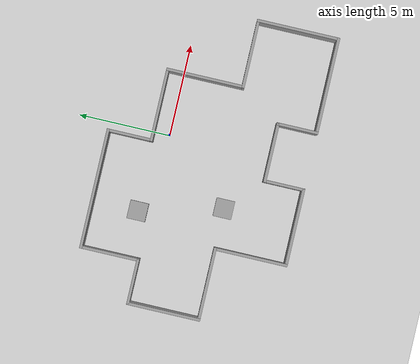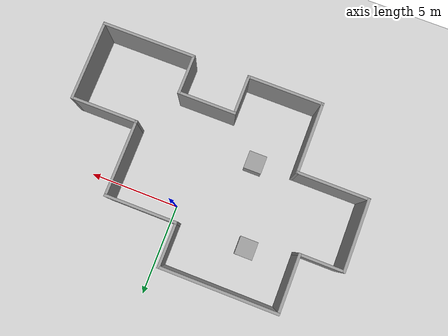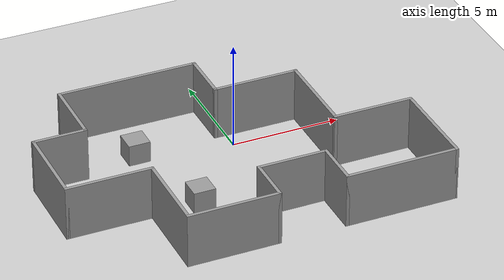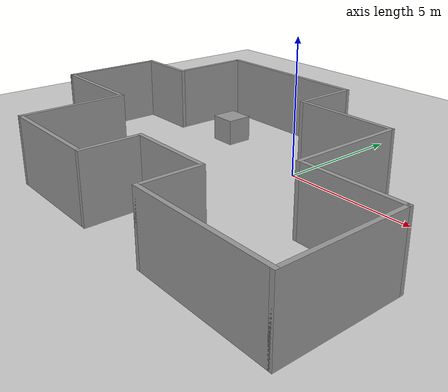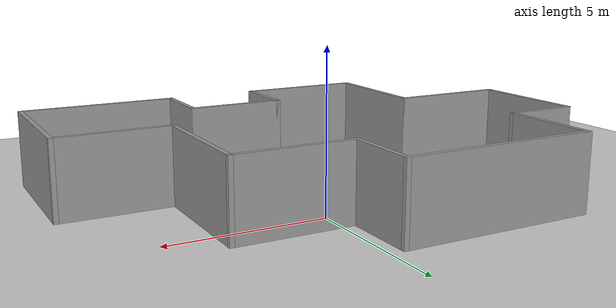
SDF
<sdf version="1.7">
 <world name="default">
  <light name="sun" type="directional">
   <pose>0 0 10 0 -0 0</pose>
   <diffuse>0.8 0.8 0.8 1</diffuse>
   <specular>0.2 0.2 0.2 1</specular>
   <attenuation>
    <range>1000</range>
    <constant>0.9</constant>
    <linear>0.01</linear>
    <quadratic>0.001</quadratic>
   </attenuation>
   <direction>-0.5 0.1 -0.9</direction>
   <spot><inner_angle>0</inner_angle><outer_angle>0</outer_angle><falloff>0</falloff></spot>
  </light>
  <model name="ground_plane">
   <static>1</static>
   <link name="link">
    <collision name="collision">
     <geometry><plane><normal>0 0 1</normal><size>100 100</size></plane></geometry>
     <surface>
      <contact><collide_bitmask>65535</collide_bitmask></contact>
      <friction><ode><mu>100</mu><mu2>50</mu2></ode></friction>
     </surface>
    </collision>
    <visual name="visual">
     <cast_shadows>0</cast_shadows>
     <geometry><plane><normal>0 0 1</normal><size>100 100</size></plane></geometry>
     <material>
      <script><uri>file://media/materials/scripts/gazebo.material</uri><name>Gazebo/Grey</name></script>
     </material>
    </visual>
   </link>
  </model>
  <gravity>0 0 -9.8</gravity>
  <magnetic_field>6e-06 2.3e-05 -4.2e-05</magnetic_field>
  <atmosphere type="adiabatic"/>
  <physics type="ode">
   <max_step_size>0.001</max_step_size>
   <real_time_factor>1</real_time_factor>
   <real_time_update_rate>1000</real_time_update_rate>
  </physics>
  <scene><ambient>0.4 0.4 0.4 1</ambient><background>0.7 0.7 0.7 1</background><shadows>1</shadows></scene>
  <spherical_coordinates>
   <surface_model>EARTH_WGS84</surface_model>
   <latitude_deg>0</latitude_deg>
   <longitude_deg>0</longitude_deg>
   <elevation>0</elevation>
   <heading_deg>0</heading_deg>
  </spherical_coordinates>
  <model name="building">
   <pose>-1.10665 -2.17338 0 0 -0 0</pose>
   <link name="Wall_1">
    <collision name="Wall_1_Collision">
     <geometry><box><size>3.25 0.15 2.5</size></box></geometry>
     <pose>0 0 1.25 0 -0 0</pose>
    </collision>
    <visual name="Wall_1_Visual">
     <pose>0 0 1.25 0 -0 0</pose>
     <geometry><box><size>3.25 0.15 2.5</size></box></geometry>
     <material>
      <script><uri>file://media/materials/scripts/gazebo.material</uri><name>Gazebo/Grey</name></script>
      <ambient>1 1 1 1</ambient>
     </material>
     <meta><layer>0</layer></meta>
    </visual>
    <pose>-5.725 3.85 0 0 -0 -1.5708</pose>
   </link>
   <link name="Wall_10">
    <collision name="Wall_10_Collision">
     <geometry><box><size>5.25 0.15 2.5</size></box></geometry>
     <pose>0 0 1.25 0 -0 0</pose>
    </collision>
    <visual name="Wall_10_Visual">
     <pose>0 0 1.25 0 -0 0</pose>
     <geometry><box><size>5.25 0.15 2.5</size></box></geometry>
     <material>
      <script><uri>file://media/materials/scripts/gazebo.material</uri><name>Gazebo/Grey</name></script>
      <ambient>1 1 1 1</ambient>
     </material>
     <meta><layer>0</layer></meta>
    </visual>
    <pose>5.525 -5.4 0 0 -0 0</pose>
   </link>
   <link name="Wall_11">
    <collision name="Wall_11_Collision">
     <geometry><box><size>4.5 0.15 2.5</size></box></geometry>
     <pose>0 0 1.25 0 -0 0</pose>
    </collision>
    <visual name="Wall_11_Visual">
     <pose>0 0 1.25 0 -0 0</pose>
     <geometry><box><size>4.5 0.15 2.5</size></box></geometry>
     <material>
      <script><uri>file://media/materials/scripts/gazebo.material</uri><name>Gazebo/Grey</name></script>
      <ambient>1 1 1 1</ambient>
     </material>
     <meta><layer>0</layer></meta>
    </visual>
    <pose>8.075 -3.225 0 0 -0 1.5708</pose>
   </link>
   <link name="Wall_12">
    <collision name="Wall_12_Collision">
     <geometry><box><size>3.75 0.15 2.5</size></box></geometry>
     <pose>0 0 1.25 0 -0 0</pose>
    </collision>
    <visual name="Wall_12_Visual">
     <pose>0 0 1.25 0 -0 0</pose>
     <geometry><box><size>3.75 0.15 2.5</size></box></geometry>
     <material>
      <script><uri>file://media/materials/scripts/gazebo.material</uri><name>Gazebo/Grey</name></script>
      <ambient>1 1 1 1</ambient>
     </material>
     <meta><layer>0</layer></meta>
    </visual>
    <pose>6.275 -1.05 0 0 -0 3.14159</pose>
   </link>
   <link name="Wall_13">
    <collision name="Wall_13_Collision">
     <geometry><box><size>4.25 0.15 2.5</size></box></geometry>
     <pose>0 0 1.25 0 -0 0</pose>
    </collision>
    <visual name="Wall_13_Visual">
     <pose>0 0 1.25 0 -0 0</pose>
     <geometry><box><size>4.25 0.15 2.5</size></box></geometry>
     <material>
      <script><uri>file://media/materials/scripts/gazebo.material</uri><name>Gazebo/Grey</name></script>
      <ambient>1 1 1 1</ambient>
     </material>
     <meta><layer>0</layer></meta>
    </visual>
    <pose>4.475 1 0 0 -0 1.5708</pose>
   </link>
   <link name="Wall_14">
    <collision name="Wall_14_Collision">
     <geometry><box><size>4 0.15 2.5</size></box></geometry>
     <pose>0 0 1.25 0 -0 0</pose>
    </collision>
    <visual name="Wall_14_Visual">
     <pose>0 0 1.25 0 -0 0</pose>
     <geometry><box><size>4 0.15 2.5</size></box></geometry>
     <material>
      <script><uri>file://media/materials/scripts/gazebo.material</uri><name>Gazebo/Grey</name></script>
      <ambient>1 1 1 1</ambient>
     </material>
     <meta><layer>0</layer></meta>
    </visual>
    <pose>2.55 3.05 0 0 -0 3.14159</pose>
   </link>
   <link name="Wall_15">
    <collision name="Wall_15_Collision">
     <geometry><box><size>2.5 0.15 2.5</size></box></geometry>
     <pose>0 0 1.25 0 -0 0</pose>
    </collision>
    <visual name="Wall_15_Visual">
     <pose>0 0 1.25 0 -0 0</pose>
     <geometry><box><size>2.5 0.15 2.5</size></box></geometry>
     <material>
      <script><uri>file://media/materials/scripts/gazebo.material</uri><name>Gazebo/Grey</name></script>
      <ambient>1 1 1 1</ambient>
     </material>
     <meta><layer>0</layer></meta>
    </visual>
    <pose>0.625 4.225 0 0 -0 1.5708</pose>
   </link>
   <link name="Wall_16">
    <collision name="Wall_16_Collision">
     <geometry><box><size>6.5 0.15 2.5</size></box></geometry>
     <pose>0 0 1.25 0 -0 0</pose>
    </collision>
    <visual name="Wall_16_Visual">
     <pose>0 0 1.25 0 -0 0</pose>
     <geometry><box><size>6.5 0.15 2.5</size></box></geometry>
     <material>
      <script><uri>file://media/materials/scripts/gazebo.material</uri><name>Gazebo/Grey</name></script>
      <ambient>1 1 1 1</ambient>
     </material>
     <meta><layer>0</layer></meta>
    </visual>
    <pose>-2.55 5.4 0 0 -0 3.14159</pose>
   </link>
   <link name="Wall_2">
    <collision name="Wall_2_Collision">
     <geometry><box><size>2.5 0.15 2.5</size></box></geometry>
     <pose>0 0 1.25 0 -0 0</pose>
    </collision>
    <visual name="Wall_2_Visual">
     <pose>0 0 1.25 0 -0 0</pose>
     <geometry><box><size>2.5 0.15 2.5</size></box></geometry>
     <material>
      <script><uri>file://media/materials/scripts/gazebo.material</uri><name>Gazebo/Grey</name></script>
      <ambient>1 1 1 1</ambient>
     </material>
     <meta><layer>0</layer></meta>
    </visual>
    <pose>-6.9 2.3 0 0 -0 3.14159</pose>
   </link>
   <link name="Wall_3">
    <collision name="Wall_3_Collision">
     <geometry><box><size>4 0.15 2.5</size></box></geometry>
     <pose>0 0 1.25 0 -0 0</pose>
    </collision>
    <visual name="Wall_3_Visual">
     <pose>0 0 1.25 0 -0 0</pose>
     <geometry><box><size>4 0.15 2.5</size></box></geometry>
     <material>
      <script><uri>file://media/materials/scripts/gazebo.material</uri><name>Gazebo/Grey</name></script>
      <ambient>1 1 1 1</ambient>
     </material>
     <meta><layer>0</layer></meta>
    </visual>
    <pose>-8.075 0.375 0 0 -0 -1.5708</pose>
   </link>
   <link name="Wall_4">
    <collision name="Wall_4_Collision">
     <geometry><box><size>4 0.15 2.5</size></box></geometry>
     <pose>0 0 1.25 0 -0 0</pose>
    </collision>
    <visual name="Wall_4_Visual">
     <pose>0 0 1.25 0 -0 0</pose>
     <geometry><box><size>4 0.15 2.5</size></box></geometry>
     <material>
      <script><uri>file://media/materials/scripts/gazebo.material</uri><name>Gazebo/Grey</name></script>
      <ambient>1 1 1 1</ambient>
     </material>
     <meta><layer>0</layer></meta>
    </visual>
    <pose>-6.15 -1.55 0 0 -0 0</pose>
   </link>
   <link name="Wall_5">
    <collision name="Wall_5_Collision">
     <geometry><box><size>4 0.15 2.5</size></box></geometry>
     <pose>0 0 1.25 0 -0 0</pose>
    </collision>
    <visual name="Wall_5_Visual">
     <pose>0 0 1.25 0 -0 0</pose>
     <geometry><box><size>4 0.15 2.5</size></box></geometry>
     <material>
      <script><uri>file://media/materials/scripts/gazebo.material</uri><name>Gazebo/Grey</name></script>
      <ambient>1 1 1 1</ambient>
     </material>
     <meta><layer>0</layer></meta>
    </visual>
    <pose>-4.225 -3.475 0 0 -0 -1.5708</pose>
   </link>
   <link name="Wall_6">
    <collision name="Wall_6_Collision">
     <geometry><box><size>4.25 0.15 2.5</size></box></geometry>
     <pose>0 0 1.25 0 -0 0</pose>
    </collision>
    <visual name="Wall_6_Visual">
     <pose>0 0 1.25 0 -0 0</pose>
     <geometry><box><size>4.25 0.15 2.5</size></box></geometry>
     <material>
      <script><uri>file://media/materials/scripts/gazebo.material</uri><name>Gazebo/Grey</name></script>
      <ambient>1 1 1 1</ambient>
     </material>
     <meta><layer>0</layer></meta>
    </visual>
    <pose>-2.175 -5.4 0 0 -0 0</pose>
   </link>
   <link name="Wall_7">
    <collision name="Wall_7_Collision">
     <geometry><box><size>2.25 0.15 2.5</size></box></geometry>
     <pose>0 0 1.25 0 -0 0</pose>
    </collision>
    <visual name="Wall_7_Visual">
     <pose>0 0 1.25 0 -0 0</pose>
     <geometry><box><size>2.25 0.15 2.5</size></box></geometry>
     <material>
      <script><uri>file://media/materials/scripts/gazebo.material</uri><name>Gazebo/Grey</name></script>
      <ambient>1 1 1 1</ambient>
     </material>
     <meta><layer>0</layer></meta>
    </visual>
    <pose>-0.125 -4.35 0 0 -0 1.5708</pose>
   </link>
   <link name="Wall_8">
    <collision name="Wall_8_Collision">
     <geometry><box><size>3.25 0.15 2.5</size></box></geometry>
     <pose>0 0 1.25 0 -0 0</pose>
    </collision>
    <visual name="Wall_8_Visual">
     <pose>0 0 1.25 0 -0 0</pose>
     <geometry><box><size>3.25 0.15 2.5</size></box></geometry>
     <material>
      <script><uri>file://media/materials/scripts/gazebo.material</uri><name>Gazebo/Grey</name></script>
      <ambient>1 1 1 1</ambient>
     </material>
     <meta><layer>0</layer></meta>
    </visual>
    <pose>1.425 -3.3 0 0 -0 0</pose>
   </link>
   <link name="Wall_9">
    <collision name="Wall_9_Collision">
     <geometry><box><size>2.25 0.15 2.5</size></box></geometry>
     <pose>0 0 1.25 0 -0 0</pose>
    </collision>
    <visual name="Wall_9_Visual">
     <pose>0 0 1.25 0 -0 0</pose>
     <geometry><box><size>2.25 0.15 2.5</size></box></geometry>
     <material>
      <script><uri>file://media/materials/scripts/gazebo.material</uri><name>Gazebo/Grey</name></script>
      <ambient>1 1 1 1</ambient>
     </material>
     <meta><layer>0</layer></meta>
    </visual>
    <pose>2.975 -4.35 0 0 -0 -1.5708</pose>
   </link>
   <static>1</static>
  </model>
  <model name="unit_box">
   <pose>-3.14928 -3.70157 0.5 -0 -0 -0</pose>
   <link name="link">
    <inertial>
     <mass>1</mass>
     <inertia>
      <ixx>0.166667</ixx>
      <ixy>0</ixy>
      <ixz>0</ixz>
      <iyy>0.166667</iyy>
      <iyz>0</iyz>
      <izz>0.166667</izz>
     </inertia>
    </inertial>
    <collision name="collision"><geometry><box><size>1 1 1</size></box></geometry></collision>
    <visual name="visual">
     <geometry><box><size>1 1 1</size></box></geometry>
     <material>
      <script><name>Gazebo/Grey</name><uri>file://media/materials/scripts/gazebo.material</uri></script>
     </material>
    </visual>
   </link>
  </model>
  <model name="unit_box_0">
   <pose>-4.30913 0.761528 0.5 0 -0 0</pose>
   <link name="link">
    <inertial>
     <mass>1</mass>
     <inertia>
      <ixx>0.166667</ixx>
      <ixy>0</ixy>
      <ixz>0</ixz>
      <iyy>0.166667</iyy>
      <iyz>0</iyz>
      <izz>0.166667</izz>
     </inertia>
    </inertial>
    <collision name="collision"><geometry><box><size>1 1 1</size></box></geometry></collision>
    <visual name="visual">
     <geometry><box><size>1 1 1</size></box></geometry>
     <material>
      <script><name>Gazebo/Grey</name><uri>file://media/materials/scripts/gazebo.material</uri></script>
     </material>
    </visual>
   </link>
  </model>
 </world>
</sdf>
